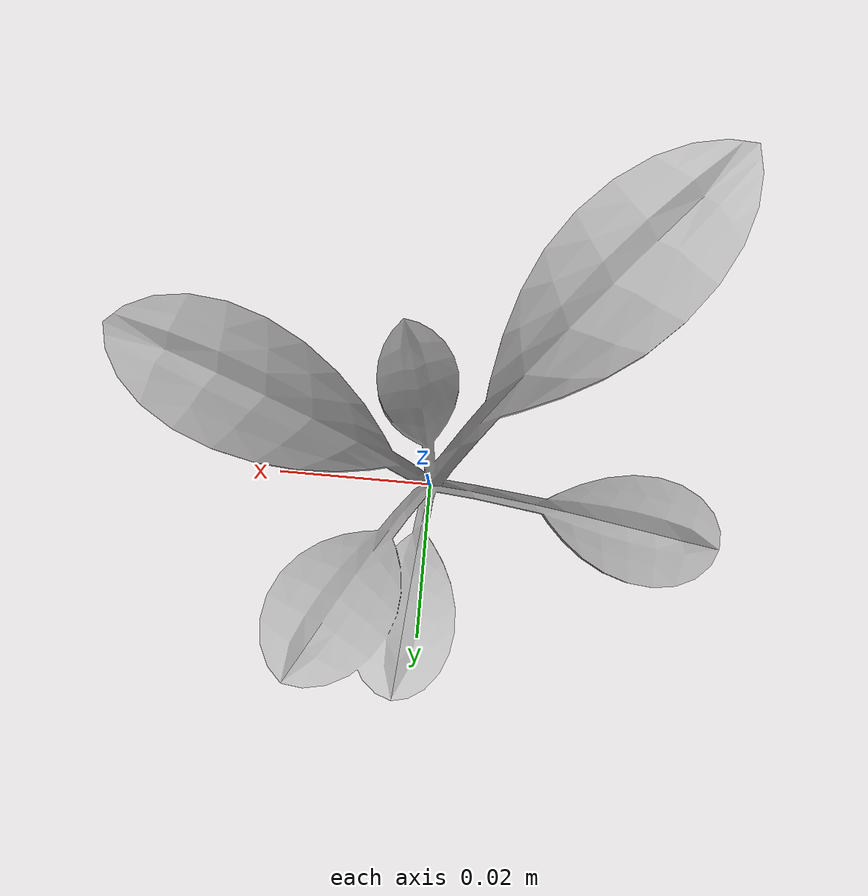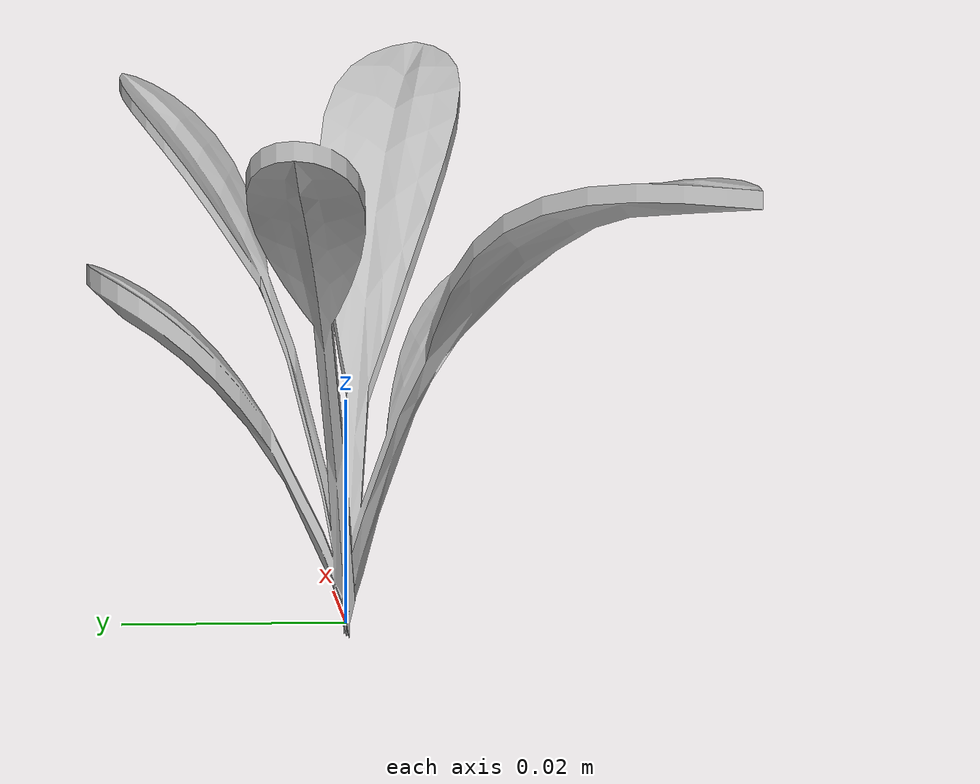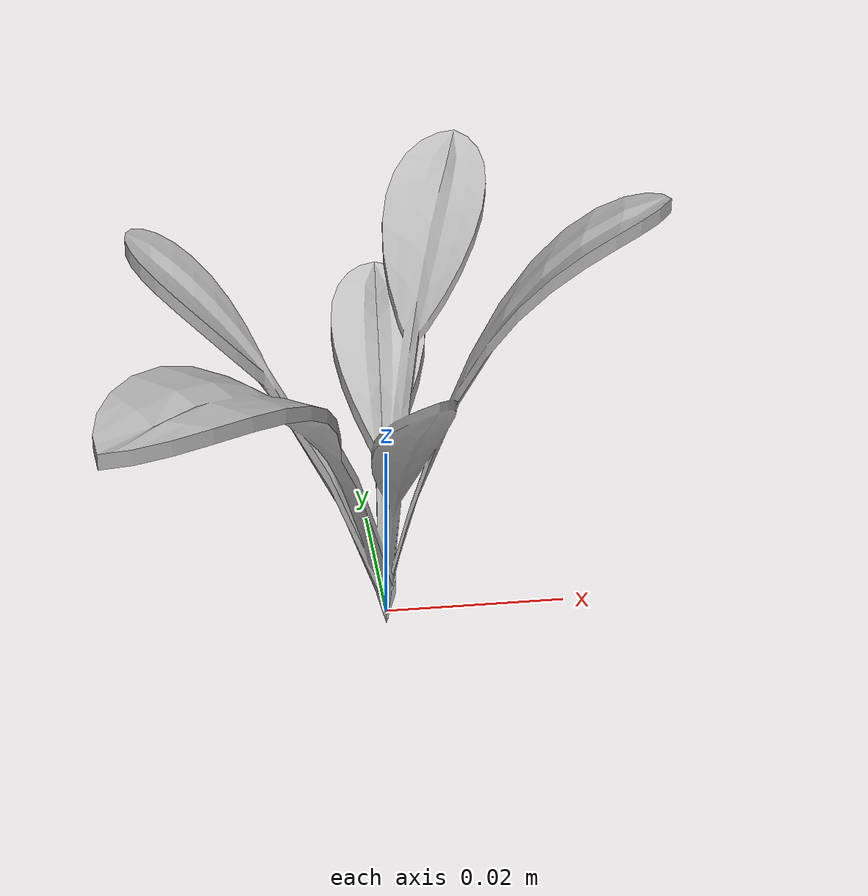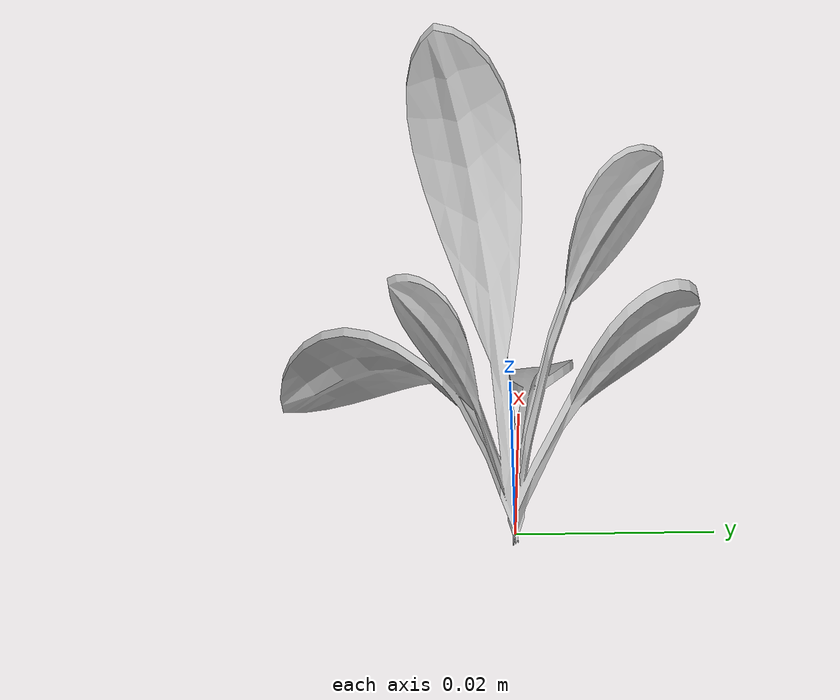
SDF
<sdf version="1.6">
  <model name="sugar_beet_45">
    <static>true</static>
    <link name="body">
      <visual name="visual">
        <geometry>
          <mesh>
            <uri>file:///sugar_beet_45/media/sugar_beet.dae</uri>
          </mesh>
        </geometry>
      </visual>
    </link>
  </model>
</sdf>
